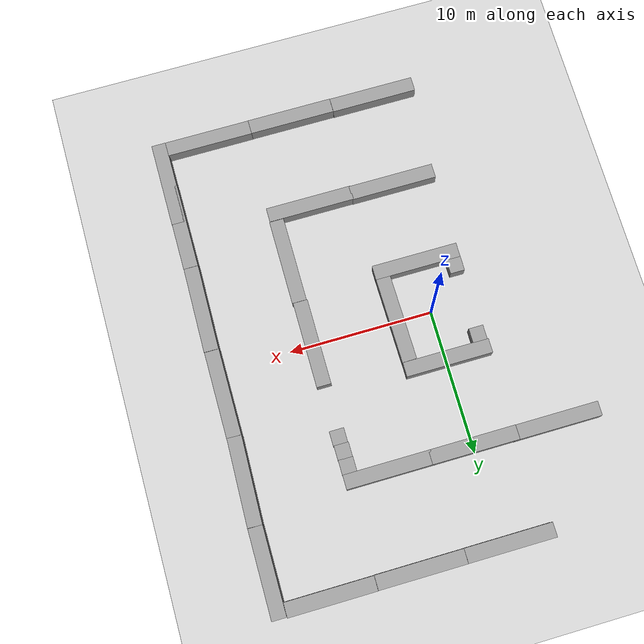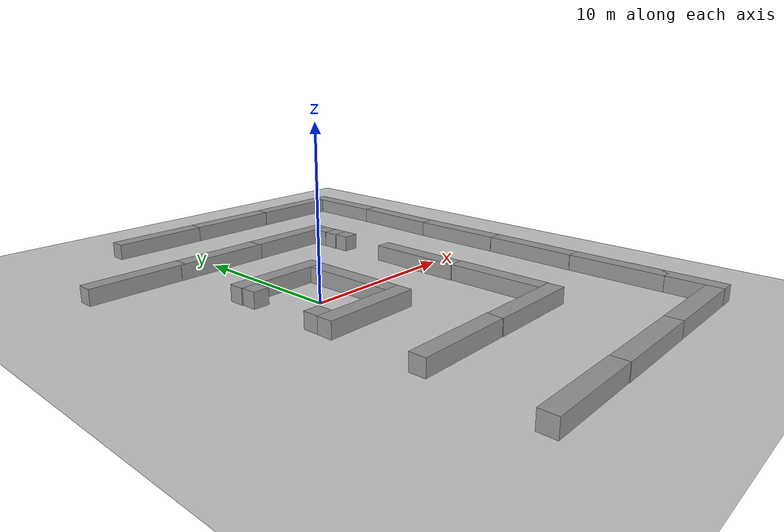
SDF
<sdf version="1.6">
 <world name="default">
  <model name="ground_plane">
   <static>1</static>
   <link name="link">
    <collision name="collision">
     <geometry><plane><normal>0 0 1</normal><size>100 100</size></plane></geometry>
     <surface>
      <contact><collide_bitmask>65535</collide_bitmask></contact>
      <friction><ode><mu>100</mu><mu2>50</mu2></ode></friction>
     </surface>
    </collision>
    <visual name="visual">
     <cast_shadows>0</cast_shadows>
     <geometry><plane><normal>0 0 1</normal><size>100 100</size></plane></geometry>
     <material>
      <script><uri>file://media/materials/scripts/gazebo.material</uri><name>Gazebo/Grey</name></script>
     </material>
    </visual>
   </link>
  </model>
  <model name="long_wall">
   <link name="link">
    <inertial>
     <mass>1</mass>
     <inertia>
      <ixx>0.166667</ixx>
      <ixy>0</ixy>
      <ixz>0</ixz>
      <iyy>0.166667</iyy>
      <iyz>0</iyz>
      <izz>0.166667</izz>
     </inertia>
    </inertial>
    <visual name="visual">
     <geometry><box><size>6 1 1</size></box></geometry>
     <material>
      <script><name>Gazebo/Grey</name><uri>file://media/materials/scripts/gazebo.material</uri></script>
      <shader type="vertex"><normal_map>__default__</normal_map></shader>
      <ambient>0.3 0.3 0.3 1</ambient>
      <diffuse>0.7 0.7 0.7 1</diffuse>
      <specular>0.01 0.01 0.01 1</specular>
      <emissive>0 0 0 1</emissive>
     </material>
    </visual>
    <collision name="collision">
     <geometry><box><size>1 1 1</size></box></geometry>
     <surface>
      <friction>
       <ode><mu>1</mu><mu2>1</mu2><fdir1>0 0 0</fdir1><slip1>0</slip1><slip2>0</slip2></ode>
       <torsional>
        <coefficient>1</coefficient>
        <patch_radius>0</patch_radius>
        <surface_radius>0</surface_radius>
        <use_patch_radius>1</use_patch_radius>
        <ode><slip>0</slip></ode>
       </torsional>
      </friction>
      <bounce><restitution_coefficient>0</restitution_coefficient><threshold>1e+06</threshold></bounce>
      <contact>
       <collide_without_contact>0</collide_without_contact>
       <collide_without_contact_bitmask>1</collide_without_contact_bitmask>
       <collide_bitmask>1</collide_bitmask>
       <ode>
        <soft_cfm>0</soft_cfm>
        <soft_erp>0.2</soft_erp>
        <kp>1e+13</kp>
        <kd>1</kd>
        <max_vel>0.01</max_vel>
        <min_depth>0</min_depth>
       </ode>
       <bullet>
        <split_impulse>1</split_impulse>
        <split_impulse_penetration_threshold>-0.01</split_impulse_penetration_threshold>
        <soft_cfm>0</soft_cfm>
        <soft_erp>0.2</soft_erp>
        <kp>1e+13</kp>
        <kd>1</kd>
       </bullet>
      </contact>
     </surface>
    </collision>
   </link>
   <static>0</static>
   <pose>0.049255 -3.53236 0.5 0 -0 0</pose>
  </model>
  <model name="long_wall_0">
   <link name="link">
    <inertial>
     <mass>1</mass>
     <inertia>
      <ixx>0.166667</ixx>
      <ixy>0</ixy>
      <ixz>0</ixz>
      <iyy>0.166667</iyy>
      <iyz>0</iyz>
      <izz>0.166667</izz>
     </inertia>
    </inertial>
    <visual name="visual">
     <geometry><box><size>6 1 1</size></box></geometry>
     <material>
      <script><name>Gazebo/Grey</name><uri>file://media/materials/scripts/gazebo.material</uri></script>
      <shader type="vertex"><normal_map>__default__</normal_map></shader>
      <ambient>0.3 0.3 0.3 1</ambient>
      <diffuse>0.7 0.7 0.7 1</diffuse>
      <specular>0.01 0.01 0.01 1</specular>
      <emissive>0 0 0 1</emissive>
     </material>
     <pose>0 0 0.5 0 -0 0</pose>
    </visual>
    <collision name="collision">
     <geometry><box><size>1 1 1</size></box></geometry>
     <surface>
      <friction>
       <ode><mu>1</mu><mu2>1</mu2><fdir1>0 0 0</fdir1><slip1>0</slip1><slip2>0</slip2></ode>
       <torsional>
        <coefficient>1</coefficient>
        <patch_radius>0</patch_radius>
        <surface_radius>0</surface_radius>
        <use_patch_radius>1</use_patch_radius>
        <ode><slip>0</slip></ode>
       </torsional>
      </friction>
      <bounce><restitution_coefficient>0</restitution_coefficient><threshold>1e+06</threshold></bounce>
      <contact>
       <collide_without_contact>0</collide_without_contact>
       <collide_without_contact_bitmask>1</collide_without_contact_bitmask>
       <collide_bitmask>1</collide_bitmask>
       <ode>
        <soft_cfm>0</soft_cfm>
        <soft_erp>0.2</soft_erp>
        <kp>1e+13</kp>
        <kd>1</kd>
        <max_vel>0.01</max_vel>
        <min_depth>0</min_depth>
       </ode>
       <bullet>
        <split_impulse>1</split_impulse>
        <split_impulse_penetration_threshold>-0.01</split_impulse_penetration_threshold>
        <soft_cfm>0</soft_cfm>
        <soft_erp>0.2</soft_erp>
        <kp>1e+13</kp>
        <kd>1</kd>
       </bullet>
      </contact>
     </surface>
    </collision>
   </link>
   <static>0</static>
   <pose>2.49568 -0.041218 0 0 0 -1.55477</pose>
  </model>
  <model name="long_wall_0_0">
   <link name="link">
    <inertial>
     <mass>1</mass>
     <inertia>
      <ixx>0.166667</ixx>
      <ixy>0</ixy>
      <ixz>0</ixz>
      <iyy>0.166667</iyy>
      <iyz>0</iyz>
      <izz>0.166667</izz>
     </inertia>
    </inertial>
    <visual name="visual">
     <geometry><box><size>6 1 1</size></box></geometry>
     <material>
      <script><name>Gazebo/Grey</name><uri>file://media/materials/scripts/gazebo.material</uri></script>
      <shader type="vertex"><normal_map>__default__</normal_map></shader>
      <ambient>0.3 0.3 0.3 1</ambient>
      <diffuse>0.7 0.7 0.7 1</diffuse>
      <specular>0.01 0.01 0.01 1</specular>
      <emissive>0 0 0 1</emissive>
     </material>
     <pose>0 0 0.5 0 -0 0</pose>
    </visual>
    <collision name="collision">
     <geometry><box><size>1 1 1</size></box></geometry>
     <surface>
      <friction>
       <ode><mu>1</mu><mu2>1</mu2><fdir1>0 0 0</fdir1><slip1>0</slip1><slip2>0</slip2></ode>
       <torsional>
        <coefficient>1</coefficient>
        <patch_radius>0</patch_radius>
        <surface_radius>0</surface_radius>
        <use_patch_radius>1</use_patch_radius>
        <ode><slip>0</slip></ode>
       </torsional>
      </friction>
      <bounce><restitution_coefficient>0</restitution_coefficient><threshold>1e+06</threshold></bounce>
      <contact>
       <collide_without_contact>0</collide_without_contact>
       <collide_without_contact_bitmask>1</collide_without_contact_bitmask>
       <collide_bitmask>1</collide_bitmask>
       <ode>
        <soft_cfm>0</soft_cfm>
        <soft_erp>0.2</soft_erp>
        <kp>1e+13</kp>
        <kd>1</kd>
        <max_vel>0.01</max_vel>
        <min_depth>0</min_depth>
       </ode>
       <bullet>
        <split_impulse>1</split_impulse>
        <split_impulse_penetration_threshold>-0.01</split_impulse_penetration_threshold>
        <soft_cfm>0</soft_cfm>
        <soft_erp>0.2</soft_erp>
        <kp>1e+13</kp>
        <kd>1</kd>
       </bullet>
      </contact>
     </surface>
    </collision>
   </link>
   <static>0</static>
   <pose>-0.064351 3.46733 0 0 -0 0</pose>
  </model>
  <model name="unit_box">
   <pose>-2.45124 -2.53302 0.5 0 -0 0</pose>
   <link name="link">
    <inertial>
     <mass>1</mass>
     <inertia>
      <ixx>0.166667</ixx>
      <ixy>0</ixy>
      <ixz>0</ixz>
      <iyy>0.166667</iyy>
      <iyz>0</iyz>
      <izz>0.166667</izz>
     </inertia>
    </inertial>
    <collision name="collision"><geometry><box><size>1 1 1</size></box></geometry></collision>
    <visual name="visual">
     <geometry><box><size>1 1 1</size></box></geometry>
     <material>
      <script><name>Gazebo/Grey</name><uri>file://media/materials/scripts/gazebo.material</uri></script>
     </material>
    </visual>
   </link>
  </model>
  <model name="unit_box_0">
   <pose>-2.48602 2.47883 0.5 0 -0 0</pose>
   <link name="link">
    <inertial>
     <mass>1</mass>
     <inertia>
      <ixx>0.166667</ixx>
      <ixy>0</ixy>
      <ixz>0</ixz>
      <iyy>0.166667</iyy>
      <iyz>0</iyz>
      <izz>0.166667</izz>
     </inertia>
    </inertial>
    <collision name="collision"><geometry><box><size>1 1 1</size></box></geometry></collision>
    <visual name="visual">
     <geometry><box><size>1 1 1</size></box></geometry>
     <material>
      <script><name>Gazebo/Grey</name><uri>file://media/materials/scripts/gazebo.material</uri></script>
     </material>
    </visual>
   </link>
  </model>
  <model name="long_wall_0_1">
   <link name="link">
    <inertial>
     <mass>1</mass>
     <inertia>
      <ixx>0.166667</ixx>
      <ixy>0</ixy>
      <ixz>0</ixz>
      <iyy>0.166667</iyy>
      <iyz>0</iyz>
      <izz>0.166667</izz>
     </inertia>
    </inertial>
    <visual name="visual">
     <geometry><box><size>6 1 1</size></box></geometry>
     <material>
      <script><name>Gazebo/Grey</name><uri>file://media/materials/scripts/gazebo.material</uri></script>
      <shader type="vertex"><normal_map>__default__</normal_map></shader>
      <ambient>0.3 0.3 0.3 1</ambient>
      <diffuse>0.7 0.7 0.7 1</diffuse>
      <specular>0.01 0.01 0.01 1</specular>
      <emissive>0 0 0 1</emissive>
     </material>
     <pose>0 0 0.5 0 -0 0</pose>
    </visual>
    <collision name="collision">
     <geometry><box><size>1 1 1</size></box></geometry>
     <surface>
      <friction>
       <ode><mu>1</mu><mu2>1</mu2><fdir1>0 0 0</fdir1><slip1>0</slip1><slip2>0</slip2></ode>
       <torsional>
        <coefficient>1</coefficient>
        <patch_radius>0</patch_radius>
        <surface_radius>0</surface_radius>
        <use_patch_radius>1</use_patch_radius>
        <ode><slip>0</slip></ode>
       </torsional>
      </friction>
      <bounce><restitution_coefficient>0</restitution_coefficient><threshold>1e+06</threshold></bounce>
      <contact>
       <collide_without_contact>0</collide_without_contact>
       <collide_without_contact_bitmask>1</collide_without_contact_bitmask>
       <collide_bitmask>1</collide_bitmask>
       <ode>
        <soft_cfm>0</soft_cfm>
        <soft_erp>0.2</soft_erp>
        <kp>1e+13</kp>
        <kd>1</kd>
        <max_vel>0.01</max_vel>
        <min_depth>0</min_depth>
       </ode>
       <bullet>
        <split_impulse>1</split_impulse>
        <split_impulse_penetration_threshold>-0.01</split_impulse_penetration_threshold>
        <soft_cfm>0</soft_cfm>
        <soft_erp>0.2</soft_erp>
        <kp>1e+13</kp>
        <kd>1</kd>
       </bullet>
      </contact>
     </surface>
    </collision>
   </link>
   <static>0</static>
   <pose>-0.009202 -9.5091 0 0 -0 0</pose>
  </model>
  <model name="long_wall_0_2">
   <link name="link">
    <inertial>
     <mass>1</mass>
     <inertia>
      <ixx>0.166667</ixx>
      <ixy>0</ixy>
      <ixz>0</ixz>
      <iyy>0.166667</iyy>
      <iyz>0</iyz>
      <izz>0.166667</izz>
     </inertia>
    </inertial>
    <visual name="visual">
     <geometry><box><size>6 1 1</size></box></geometry>
     <material>
      <script><name>Gazebo/Grey</name><uri>file://media/materials/scripts/gazebo.material</uri></script>
      <shader type="vertex"><normal_map>__default__</normal_map></shader>
      <ambient>0.3 0.3 0.3 1</ambient>
      <diffuse>0.7 0.7 0.7 1</diffuse>
      <specular>0.01 0.01 0.01 1</specular>
      <emissive>0 0 0 1</emissive>
     </material>
     <pose>0 0 0.5 0 -0 0</pose>
    </visual>
    <collision name="collision">
     <geometry><box><size>1 1 1</size></box></geometry>
     <surface>
      <friction>
       <ode><mu>1</mu><mu2>1</mu2><fdir1>0 0 0</fdir1><slip1>0</slip1><slip2>0</slip2></ode>
       <torsional>
        <coefficient>1</coefficient>
        <patch_radius>0</patch_radius>
        <surface_radius>0</surface_radius>
        <use_patch_radius>1</use_patch_radius>
        <ode><slip>0</slip></ode>
       </torsional>
      </friction>
      <bounce><restitution_coefficient>0</restitution_coefficient><threshold>1e+06</threshold></bounce>
      <contact>
       <collide_without_contact>0</collide_without_contact>
       <collide_without_contact_bitmask>1</collide_without_contact_bitmask>
       <collide_bitmask>1</collide_bitmask>
       <ode>
        <soft_cfm>0</soft_cfm>
        <soft_erp>0.2</soft_erp>
        <kp>1e+13</kp>
        <kd>1</kd>
        <max_vel>0.01</max_vel>
        <min_depth>0</min_depth>
       </ode>
       <bullet>
        <split_impulse>1</split_impulse>
        <split_impulse_penetration_threshold>-0.01</split_impulse_penetration_threshold>
        <soft_cfm>0</soft_cfm>
        <soft_erp>0.2</soft_erp>
        <kp>1e+13</kp>
        <kd>1</kd>
       </bullet>
      </contact>
     </surface>
    </collision>
   </link>
   <static>0</static>
   <pose>-0.017464 9.51056 0 0 -0 0</pose>
  </model>
  <model name="long_wall_0_3">
   <link name="link">
    <inertial>
     <mass>1</mass>
     <inertia>
      <ixx>0.166667</ixx>
      <ixy>0</ixy>
      <ixz>0</ixz>
      <iyy>0.166667</iyy>
      <iyz>0</iyz>
      <izz>0.166667</izz>
     </inertia>
    </inertial>
    <visual name="visual">
     <geometry><box><size>6 1 1</size></box></geometry>
     <material>
      <script><name>Gazebo/Grey</name><uri>file://media/materials/scripts/gazebo.material</uri></script>
      <shader type="vertex"><normal_map>__default__</normal_map></shader>
      <ambient>0.3 0.3 0.3 1</ambient>
      <diffuse>0.7 0.7 0.7 1</diffuse>
      <specular>0.01 0.01 0.01 1</specular>
      <emissive>0 0 0 1</emissive>
     </material>
     <pose>0 0 0.5 0 -0 0</pose>
    </visual>
    <collision name="collision">
     <geometry><box><size>1 1 1</size></box></geometry>
     <surface>
      <friction>
       <ode><mu>1</mu><mu2>1</mu2><fdir1>0 0 0</fdir1><slip1>0</slip1><slip2>0</slip2></ode>
       <torsional>
        <coefficient>1</coefficient>
        <patch_radius>0</patch_radius>
        <surface_radius>0</surface_radius>
        <use_patch_radius>1</use_patch_radius>
        <ode><slip>0</slip></ode>
       </torsional>
      </friction>
      <bounce><restitution_coefficient>0</restitution_coefficient><threshold>1e+06</threshold></bounce>
      <contact>
       <collide_without_contact>0</collide_without_contact>
       <collide_without_contact_bitmask>1</collide_without_contact_bitmask>
       <collide_bitmask>1</collide_bitmask>
       <ode>
        <soft_cfm>0</soft_cfm>
        <soft_erp>0.2</soft_erp>
        <kp>1e+13</kp>
        <kd>1</kd>
        <max_vel>0.01</max_vel>
        <min_depth>0</min_depth>
       </ode>
       <bullet>
        <split_impulse>1</split_impulse>
        <split_impulse_penetration_threshold>-0.01</split_impulse_penetration_threshold>
        <soft_cfm>0</soft_cfm>
        <soft_erp>0.2</soft_erp>
        <kp>1e+13</kp>
        <kd>1</kd>
       </bullet>
      </contact>
     </surface>
    </collision>
   </link>
   <static>0</static>
   <pose>5.92003 -9.53571 0 0 -0 0</pose>
  </model>
  <model name="long_wall_0_4">
   <link name="link">
    <inertial>
     <mass>1</mass>
     <inertia>
      <ixx>0.166667</ixx>
      <ixy>0</ixy>
      <ixz>0</ixz>
      <iyy>0.166667</iyy>
      <iyz>0</iyz>
      <izz>0.166667</izz>
     </inertia>
    </inertial>
    <visual name="visual">
     <geometry><box><size>6 1 1</size></box></geometry>
     <material>
      <script><name>Gazebo/Grey</name><uri>file://media/materials/scripts/gazebo.material</uri></script>
      <shader type="vertex"><normal_map>__default__</normal_map></shader>
      <ambient>0.3 0.3 0.3 1</ambient>
      <diffuse>0.7 0.7 0.7 1</diffuse>
      <specular>0.01 0.01 0.01 1</specular>
      <emissive>0 0 0 1</emissive>
     </material>
     <pose>0 0 0.5 0 -0 0</pose>
    </visual>
    <collision name="collision">
     <geometry><box><size>1 1 1</size></box></geometry>
     <surface>
      <friction>
       <ode><mu>1</mu><mu2>1</mu2><fdir1>0 0 0</fdir1><slip1>0</slip1><slip2>0</slip2></ode>
       <torsional>
        <coefficient>1</coefficient>
        <patch_radius>0</patch_radius>
        <surface_radius>0</surface_radius>
        <use_patch_radius>1</use_patch_radius>
        <ode><slip>0</slip></ode>
       </torsional>
      </friction>
      <bounce><restitution_coefficient>0</restitution_coefficient><threshold>1e+06</threshold></bounce>
      <contact>
       <collide_without_contact>0</collide_without_contact>
       <collide_without_contact_bitmask>1</collide_without_contact_bitmask>
       <collide_bitmask>1</collide_bitmask>
       <ode>
        <soft_cfm>0</soft_cfm>
        <soft_erp>0.2</soft_erp>
        <kp>1e+13</kp>
        <kd>1</kd>
        <max_vel>0.01</max_vel>
        <min_depth>0</min_depth>
       </ode>
       <bullet>
        <split_impulse>1</split_impulse>
        <split_impulse_penetration_threshold>-0.01</split_impulse_penetration_threshold>
        <soft_cfm>0</soft_cfm>
        <soft_erp>0.2</soft_erp>
        <kp>1e+13</kp>
        <kd>1</kd>
       </bullet>
      </contact>
     </surface>
    </collision>
   </link>
   <static>0</static>
   <pose>5.83103 9.51107 0 0 -0 0</pose>
  </model>
  <model name="long_wall_0_5">
   <link name="link">
    <inertial>
     <mass>1</mass>
     <inertia>
      <ixx>0.166667</ixx>
      <ixy>0</ixy>
      <ixz>0</ixz>
      <iyy>0.166667</iyy>
      <iyz>0</iyz>
      <izz>0.166667</izz>
     </inertia>
    </inertial>
    <visual name="visual">
     <geometry><box><size>6 1 1</size></box></geometry>
     <material>
      <script><name>Gazebo/Grey</name><uri>file://media/materials/scripts/gazebo.material</uri></script>
      <shader type="vertex"><normal_map>__default__</normal_map></shader>
      <ambient>0.3 0.3 0.3 1</ambient>
      <diffuse>0.7 0.7 0.7 1</diffuse>
      <specular>0.01 0.01 0.01 1</specular>
      <emissive>0 0 0 1</emissive>
     </material>
     <pose>0 0 0.5 0 -0 0</pose>
    </visual>
    <collision name="collision">
     <geometry><box><size>1 1 1</size></box></geometry>
     <surface>
      <friction>
       <ode><mu>1</mu><mu2>1</mu2><fdir1>0 0 0</fdir1><slip1>0</slip1><slip2>0</slip2></ode>
       <torsional>
        <coefficient>1</coefficient>
        <patch_radius>0</patch_radius>
        <surface_radius>0</surface_radius>
        <use_patch_radius>1</use_patch_radius>
        <ode><slip>0</slip></ode>
       </torsional>
      </friction>
      <bounce><restitution_coefficient>0</restitution_coefficient><threshold>1e+06</threshold></bounce>
      <contact>
       <collide_without_contact>0</collide_without_contact>
       <collide_without_contact_bitmask>1</collide_without_contact_bitmask>
       <collide_bitmask>1</collide_bitmask>
       <ode>
        <soft_cfm>0</soft_cfm>
        <soft_erp>0.2</soft_erp>
        <kp>1e+13</kp>
        <kd>1</kd>
        <max_vel>0.01</max_vel>
        <min_depth>0</min_depth>
       </ode>
       <bullet>
        <split_impulse>1</split_impulse>
        <split_impulse_penetration_threshold>-0.01</split_impulse_penetration_threshold>
        <soft_cfm>0</soft_cfm>
        <soft_erp>0.2</soft_erp>
        <kp>1e+13</kp>
        <kd>1</kd>
       </bullet>
      </contact>
     </surface>
    </collision>
   </link>
   <static>0</static>
   <pose>8.45903 -6.01437 0 0 -0 1.5708</pose>
  </model>
  <model name="long_wall_0_6">
   <link name="link">
    <inertial>
     <mass>1</mass>
     <inertia>
      <ixx>0.166667</ixx>
      <ixy>0</ixy>
      <ixz>0</ixz>
      <iyy>0.166667</iyy>
      <iyz>0</iyz>
      <izz>0.166667</izz>
     </inertia>
    </inertial>
    <visual name="visual">
     <geometry><box><size>6 1 1</size></box></geometry>
     <material>
      <script><name>Gazebo/Grey</name><uri>file://media/materials/scripts/gazebo.material</uri></script>
      <shader type="vertex"><normal_map>__default__</normal_map></shader>
      <ambient>0.3 0.3 0.3 1</ambient>
      <diffuse>0.7 0.7 0.7 1</diffuse>
      <specular>0.01 0.01 0.01 1</specular>
      <emissive>0 0 0 1</emissive>
     </material>
     <pose>0 0 0.5 0 -0 0</pose>
    </visual>
    <collision name="collision">
     <geometry><box><size>1 1 1</size></box></geometry>
     <surface>
      <friction>
       <ode><mu>1</mu><mu2>1</mu2><fdir1>0 0 0</fdir1><slip1>0</slip1><slip2>0</slip2></ode>
       <torsional>
        <coefficient>1</coefficient>
        <patch_radius>0</patch_radius>
        <surface_radius>0</surface_radius>
        <use_patch_radius>1</use_patch_radius>
        <ode><slip>0</slip></ode>
       </torsional>
      </friction>
      <bounce><restitution_coefficient>0</restitution_coefficient><threshold>1e+06</threshold></bounce>
      <contact>
       <collide_without_contact>0</collide_without_contact>
       <collide_without_contact_bitmask>1</collide_without_contact_bitmask>
       <collide_bitmask>1</collide_bitmask>
       <ode>
        <soft_cfm>0</soft_cfm>
        <soft_erp>0.2</soft_erp>
        <kp>1e+13</kp>
        <kd>1</kd>
        <max_vel>0.01</max_vel>
        <min_depth>0</min_depth>
       </ode>
       <bullet>
        <split_impulse>1</split_impulse>
        <split_impulse_penetration_threshold>-0.01</split_impulse_penetration_threshold>
        <soft_cfm>0</soft_cfm>
        <soft_erp>0.2</soft_erp>
        <kp>1e+13</kp>
        <kd>1</kd>
       </bullet>
      </contact>
     </surface>
    </collision>
   </link>
   <static>0</static>
   <pose>8.40487 -0.007823 0 0 0 -1.5708</pose>
  </model>
  <model name="unit_box_1">
   <pose>8.34651 8.51743 0.5 0 -0 0</pose>
   <link name="link">
    <inertial>
     <mass>1</mass>
     <inertia>
      <ixx>0.166667</ixx>
      <ixy>0</ixy>
      <ixz>0</ixz>
      <iyy>0.166667</iyy>
      <iyz>0</iyz>
      <izz>0.166667</izz>
     </inertia>
    </inertial>
    <collision name="collision"><geometry><box><size>1 1 1</size></box></geometry></collision>
    <visual name="visual">
     <geometry><box><size>1 1 1</size></box></geometry>
     <material>
      <script><name>Gazebo/Grey</name><uri>file://media/materials/scripts/gazebo.material</uri></script>
     </material>
    </visual>
   </link>
  </model>
  <model name="unit_box_2">
   <pose>8.36219 7.52912 0.5 0 -0 0</pose>
   <link name="link">
    <inertial>
     <mass>1</mass>
     <inertia>
      <ixx>0.166667</ixx>
      <ixy>0</ixy>
      <ixz>0</ixz>
      <iyy>0.166667</iyy>
      <iyz>0</iyz>
      <izz>0.166667</izz>
     </inertia>
    </inertial>
    <collision name="collision"><geometry><box><size>1 1 1</size></box></geometry></collision>
    <visual name="visual">
     <geometry><box><size>1 1 1</size></box></geometry>
     <material>
      <script><name>Gazebo/Grey</name><uri>file://media/materials/scripts/gazebo.material</uri></script>
     </material>
    </visual>
   </link>
  </model>
  <model name="unit_box_3">
   <pose>8.4049 6.54082 0.5 0 -0 0</pose>
   <link name="link">
    <inertial>
     <mass>1</mass>
     <inertia>
      <ixx>0.166667</ixx>
      <ixy>0</ixy>
      <ixz>0</ixz>
      <iyy>0.166667</iyy>
      <iyz>0</iyz>
      <izz>0.166667</izz>
     </inertia>
    </inertial>
    <collision name="collision"><geometry><box><size>1 1 1</size></box></geometry></collision>
    <visual name="visual">
     <geometry><box><size>1 1 1</size></box></geometry>
     <material>
      <script><name>Gazebo/Grey</name><uri>file://media/materials/scripts/gazebo.material</uri></script>
     </material>
    </visual>
   </link>
  </model>
  <model name="long_wall_0_7">
   <link name="link">
    <inertial>
     <mass>1</mass>
     <inertia>
      <ixx>0.166667</ixx>
      <ixy>0</ixy>
      <ixz>0</ixz>
      <iyy>0.166667</iyy>
      <iyz>0</iyz>
      <izz>0.166667</izz>
     </inertia>
    </inertial>
    <visual name="visual">
     <geometry><box><size>6 1 1</size></box></geometry>
     <material>
      <script><name>Gazebo/Grey</name><uri>file://media/materials/scripts/gazebo.material</uri></script>
      <shader type="vertex"><normal_map>__default__</normal_map></shader>
      <ambient>0.3 0.3 0.3 1</ambient>
      <diffuse>0.7 0.7 0.7 1</diffuse>
      <specular>0.01 0.01 0.01 1</specular>
      <emissive>0 0 0 1</emissive>
     </material>
     <pose>0 0 0.5 0 -0 0</pose>
    </visual>
    <collision name="collision">
     <geometry><box><size>1 1 1</size></box></geometry>
     <surface>
      <friction>
       <ode><mu>1</mu><mu2>1</mu2><fdir1>0 0 0</fdir1><slip1>0</slip1><slip2>0</slip2></ode>
       <torsional>
        <coefficient>1</coefficient>
        <patch_radius>0</patch_radius>
        <surface_radius>0</surface_radius>
        <use_patch_radius>1</use_patch_radius>
        <ode><slip>0</slip></ode>
       </torsional>
      </friction>
      <bounce><restitution_coefficient>0</restitution_coefficient><threshold>1e+06</threshold></bounce>
      <contact>
       <collide_without_contact>0</collide_without_contact>
       <collide_without_contact_bitmask>1</collide_without_contact_bitmask>
       <collide_bitmask>1</collide_bitmask>
       <ode>
        <soft_cfm>0</soft_cfm>
        <soft_erp>0.2</soft_erp>
        <kp>1e+13</kp>
        <kd>1</kd>
        <max_vel>0.01</max_vel>
        <min_depth>0</min_depth>
       </ode>
       <bullet>
        <split_impulse>1</split_impulse>
        <split_impulse_penetration_threshold>-0.01</split_impulse_penetration_threshold>
        <soft_cfm>0</soft_cfm>
        <soft_erp>0.2</soft_erp>
        <kp>1e+13</kp>
        <kd>1</kd>
       </bullet>
      </contact>
     </surface>
    </collision>
   </link>
   <static>0</static>
   <pose>-5.72862 9.522 0 0 -0 0</pose>
  </model>
  <model name="long_wall_0_17">
   <link name="link">
    <inertial>
     <mass>1</mass>
     <inertia>
      <ixx>0.166667</ixx>
      <ixy>0</ixy>
      <ixz>0</ixz>
      <iyy>0.166667</iyy>
      <iyz>0</iyz>
      <izz>0.166667</izz>
     </inertia>
    </inertial>
    <visual name="visual">
     <geometry><box><size>6 1 1</size></box></geometry>
     <material>
      <script><name>Gazebo/Grey</name><uri>file://media/materials/scripts/gazebo.material</uri></script>
      <shader type="vertex"><normal_map>__default__</normal_map></shader>
      <ambient>0.3 0.3 0.3 1</ambient>
      <diffuse>0.7 0.7 0.7 1</diffuse>
      <specular>0.01 0.01 0.01 1</specular>
      <emissive>0 0 0 1</emissive>
     </material>
     <pose>0 0 0.5 0 -0 0</pose>
    </visual>
    <collision name="collision">
     <geometry><box><size>1 1 1</size></box></geometry>
     <surface>
      <friction>
       <ode><mu>1</mu><mu2>1</mu2><fdir1>0 0 0</fdir1><slip1>0</slip1><slip2>0</slip2></ode>
       <torsional>
        <coefficient>1</coefficient>
        <patch_radius>0</patch_radius>
        <surface_radius>0</surface_radius>
        <use_patch_radius>1</use_patch_radius>
        <ode><slip>0</slip></ode>
       </torsional>
      </friction>
      <bounce><restitution_coefficient>0</restitution_coefficient><threshold>1e+06</threshold></bounce>
      <contact>
       <collide_without_contact>0</collide_without_contact>
       <collide_without_contact_bitmask>1</collide_without_contact_bitmask>
       <collide_bitmask>1</collide_bitmask>
       <ode>
        <soft_cfm>0</soft_cfm>
        <soft_erp>0.2</soft_erp>
        <kp>1e+13</kp>
        <kd>1</kd>
        <max_vel>0.01</max_vel>
        <min_depth>0</min_depth>
       </ode>
       <bullet>
        <split_impulse>1</split_impulse>
        <split_impulse_penetration_threshold>-0.01</split_impulse_penetration_threshold>
        <soft_cfm>0</soft_cfm>
        <soft_erp>0.2</soft_erp>
        <kp>1e+13</kp>
        <kd>1</kd>
       </bullet>
      </contact>
     </surface>
    </collision>
   </link>
   <static>0</static>
   <pose>5.6186 16.1786 0 0 -0 0</pose>
  </model>
  <model name="long_wall_0_18">
   <link name="link">
    <inertial>
     <mass>1</mass>
     <inertia>
      <ixx>0.166667</ixx>
      <ixy>0</ixy>
      <ixz>0</ixz>
      <iyy>0.166667</iyy>
      <iyz>0</iyz>
      <izz>0.166667</izz>
     </inertia>
    </inertial>
    <visual name="visual">
     <geometry><box><size>6 1 1</size></box></geometry>
     <material>
      <script><name>Gazebo/Grey</name><uri>file://media/materials/scripts/gazebo.material</uri></script>
      <shader type="vertex"><normal_map>__default__</normal_map></shader>
      <ambient>0.3 0.3 0.3 1</ambient>
      <diffuse>0.7 0.7 0.7 1</diffuse>
      <specular>0.01 0.01 0.01 1</specular>
      <emissive>0 0 0 1</emissive>
     </material>
     <pose>0 0 0.5 0 -0 0</pose>
    </visual>
    <collision name="collision">
     <geometry><box><size>1 1 1</size></box></geometry>
     <surface>
      <friction>
       <ode><mu>1</mu><mu2>1</mu2><fdir1>0 0 0</fdir1><slip1>0</slip1><slip2>0</slip2></ode>
       <torsional>
        <coefficient>1</coefficient>
        <patch_radius>0</patch_radius>
        <surface_radius>0</surface_radius>
        <use_patch_radius>1</use_patch_radius>
        <ode><slip>0</slip></ode>
       </torsional>
      </friction>
      <bounce><restitution_coefficient>0</restitution_coefficient><threshold>1e+06</threshold></bounce>
      <contact>
       <collide_without_contact>0</collide_without_contact>
       <collide_without_contact_bitmask>1</collide_without_contact_bitmask>
       <collide_bitmask>1</collide_bitmask>
       <ode>
        <soft_cfm>0</soft_cfm>
        <soft_erp>0.2</soft_erp>
        <kp>1e+13</kp>
        <kd>1</kd>
        <max_vel>0.01</max_vel>
        <min_depth>0</min_depth>
       </ode>
       <bullet>
        <split_impulse>1</split_impulse>
        <split_impulse_penetration_threshold>-0.01</split_impulse_penetration_threshold>
        <soft_cfm>0</soft_cfm>
        <soft_erp>0.2</soft_erp>
        <kp>1e+13</kp>
        <kd>1</kd>
       </bullet>
      </contact>
     </surface>
    </collision>
   </link>
   <static>0</static>
   <pose>-0.38274 16.1708 0 0 -0 0</pose>
  </model>
  <model name="long_wall_0_28">
   <link name="link">
    <inertial>
     <mass>1</mass>
     <inertia>
      <ixx>0.166667</ixx>
      <ixy>0</ixy>
      <ixz>0</ixz>
      <iyy>0.166667</iyy>
      <iyz>0</iyz>
      <izz>0.166667</izz>
     </inertia>
    </inertial>
    <visual name="visual">
     <geometry><box><size>6 1 1</size></box></geometry>
     <material>
      <script><name>Gazebo/Grey</name><uri>file://media/materials/scripts/gazebo.material</uri></script>
      <shader type="vertex"><normal_map>__default__</normal_map></shader>
      <ambient>0.3 0.3 0.3 1</ambient>
      <diffuse>0.7 0.7 0.7 1</diffuse>
      <specular>0.01 0.01 0.01 1</specular>
      <emissive>0 0 0 1</emissive>
     </material>
     <pose>0 0 0.5 0 -0 0</pose>
    </visual>
    <collision name="collision">
     <geometry><box><size>1 1 1</size></box></geometry>
     <surface>
      <friction>
       <ode><mu>1</mu><mu2>1</mu2><fdir1>0 0 0</fdir1><slip1>0</slip1><slip2>0</slip2></ode>
       <torsional>
        <coefficient>1</coefficient>
        <patch_radius>0</patch_radius>
        <surface_radius>0</surface_radius>
        <use_patch_radius>1</use_patch_radius>
        <ode><slip>0</slip></ode>
       </torsional>
      </friction>
      <bounce><restitution_coefficient>0</restitution_coefficient><threshold>1e+06</threshold></bounce>
      <contact>
       <collide_without_contact>0</collide_without_contact>
       <collide_without_contact_bitmask>1</collide_without_contact_bitmask>
       <collide_bitmask>1</collide_bitmask>
       <ode>
        <soft_cfm>0</soft_cfm>
        <soft_erp>0.2</soft_erp>
        <kp>1e+13</kp>
        <kd>1</kd>
        <max_vel>0.01</max_vel>
        <min_depth>0</min_depth>
       </ode>
       <bullet>
        <split_impulse>1</split_impulse>
        <split_impulse_penetration_threshold>-0.01</split_impulse_penetration_threshold>
        <soft_cfm>0</soft_cfm>
        <soft_erp>0.2</soft_erp>
        <kp>1e+13</kp>
        <kd>1</kd>
       </bullet>
      </contact>
     </surface>
    </collision>
   </link>
   <static>0</static>
   <pose>11.6294 16.1915 0 0 -0 0</pose>
  </model>
  <model name="long_wall_0_29">
   <link name="link">
    <inertial>
     <mass>1</mass>
     <inertia>
      <ixx>0.166667</ixx>
      <ixy>0</ixy>
      <ixz>0</ixz>
      <iyy>0.166667</iyy>
      <iyz>0</iyz>
      <izz>0.166667</izz>
     </inertia>
    </inertial>
    <visual name="visual">
     <geometry><box><size>6 1 1</size></box></geometry>
     <material>
      <script><name>Gazebo/Grey</name><uri>file://media/materials/scripts/gazebo.material</uri></script>
      <shader type="vertex"><normal_map>__default__</normal_map></shader>
      <ambient>0.3 0.3 0.3 1</ambient>
      <diffuse>0.7 0.7 0.7 1</diffuse>
      <specular>0.01 0.01 0.01 1</specular>
      <emissive>0 0 0 1</emissive>
     </material>
     <pose>0 0 0.5 0 -0 0</pose>
    </visual>
    <collision name="collision">
     <geometry><box><size>1 1 1</size></box></geometry>
     <surface>
      <friction>
       <ode><mu>1</mu><mu2>1</mu2><fdir1>0 0 0</fdir1><slip1>0</slip1><slip2>0</slip2></ode>
       <torsional>
        <coefficient>1</coefficient>
        <patch_radius>0</patch_radius>
        <surface_radius>0</surface_radius>
        <use_patch_radius>1</use_patch_radius>
        <ode><slip>0</slip></ode>
       </torsional>
      </friction>
      <bounce><restitution_coefficient>0</restitution_coefficient><threshold>1e+06</threshold></bounce>
      <contact>
       <collide_without_contact>0</collide_without_contact>
       <collide_without_contact_bitmask>1</collide_without_contact_bitmask>
       <collide_bitmask>1</collide_bitmask>
       <ode>
        <soft_cfm>0</soft_cfm>
        <soft_erp>0.2</soft_erp>
        <kp>1e+13</kp>
        <kd>1</kd>
        <max_vel>0.01</max_vel>
        <min_depth>0</min_depth>
       </ode>
       <bullet>
        <split_impulse>1</split_impulse>
        <split_impulse_penetration_threshold>-0.01</split_impulse_penetration_threshold>
        <soft_cfm>0</soft_cfm>
        <soft_erp>0.2</soft_erp>
        <kp>1e+13</kp>
        <kd>1</kd>
       </bullet>
      </contact>
     </surface>
    </collision>
   </link>
   <static>0</static>
   <pose>15.143 13.6247 0 0 0 -1.5708</pose>
  </model>
  <model name="long_wall_0_30">
   <link name="link">
    <inertial>
     <mass>1</mass>
     <inertia>
      <ixx>0.166667</ixx>
      <ixy>0</ixy>
      <ixz>0</ixz>
      <iyy>0.166667</iyy>
      <iyz>0</iyz>
      <izz>0.166667</izz>
     </inertia>
    </inertial>
    <visual name="visual">
     <geometry><box><size>6 1 1</size></box></geometry>
     <material>
      <script><name>Gazebo/Grey</name><uri>file://media/materials/scripts/gazebo.material</uri></script>
      <shader type="vertex"><normal_map>__default__</normal_map></shader>
      <ambient>0.3 0.3 0.3 1</ambient>
      <diffuse>0.7 0.7 0.7 1</diffuse>
      <specular>0.01 0.01 0.01 1</specular>
      <emissive>0 0 0 1</emissive>
     </material>
     <pose>0 0 0.5 0 -0 0</pose>
    </visual>
    <collision name="collision">
     <geometry><box><size>1 1 1</size></box></geometry>
     <surface>
      <friction>
       <ode><mu>1</mu><mu2>1</mu2><fdir1>0 0 0</fdir1><slip1>0</slip1><slip2>0</slip2></ode>
       <torsional>
        <coefficient>1</coefficient>
        <patch_radius>0</patch_radius>
        <surface_radius>0</surface_radius>
        <use_patch_radius>1</use_patch_radius>
        <ode><slip>0</slip></ode>
       </torsional>
      </friction>
      <bounce><restitution_coefficient>0</restitution_coefficient><threshold>1e+06</threshold></bounce>
      <contact>
       <collide_without_contact>0</collide_without_contact>
       <collide_without_contact_bitmask>1</collide_without_contact_bitmask>
       <collide_bitmask>1</collide_bitmask>
       <ode>
        <soft_cfm>0</soft_cfm>
        <soft_erp>0.2</soft_erp>
        <kp>1e+13</kp>
        <kd>1</kd>
        <max_vel>0.01</max_vel>
        <min_depth>0</min_depth>
       </ode>
       <bullet>
        <split_impulse>1</split_impulse>
        <split_impulse_penetration_threshold>-0.01</split_impulse_penetration_threshold>
        <soft_cfm>0</soft_cfm>
        <soft_erp>0.2</soft_erp>
        <kp>1e+13</kp>
        <kd>1</kd>
       </bullet>
      </contact>
     </surface>
    </collision>
   </link>
   <static>0</static>
   <pose>15.0703 7.61763 0 0 0 -1.59719</pose>
  </model>
  <model name="long_wall_0_31">
   <link name="link">
    <inertial>
     <mass>1</mass>
     <inertia>
      <ixx>0.166667</ixx>
      <ixy>0</ixy>
      <ixz>0</ixz>
      <iyy>0.166667</iyy>
      <iyz>0</iyz>
      <izz>0.166667</izz>
     </inertia>
    </inertial>
    <visual name="visual">
     <geometry><box><size>6 1 1</size></box></geometry>
     <material>
      <script><name>Gazebo/Grey</name><uri>file://media/materials/scripts/gazebo.material</uri></script>
      <shader type="vertex"><normal_map>__default__</normal_map></shader>
      <ambient>0.3 0.3 0.3 1</ambient>
      <diffuse>0.7 0.7 0.7 1</diffuse>
      <specular>0.01 0.01 0.01 1</specular>
      <emissive>0 0 0 1</emissive>
     </material>
     <pose>0 0 0.5 0 -0 0</pose>
    </visual>
    <collision name="collision">
     <geometry><box><size>1 1 1</size></box></geometry>
     <surface>
      <friction>
       <ode><mu>1</mu><mu2>1</mu2><fdir1>0 0 0</fdir1><slip1>0</slip1><slip2>0</slip2></ode>
       <torsional>
        <coefficient>1</coefficient>
        <patch_radius>0</patch_radius>
        <surface_radius>0</surface_radius>
        <use_patch_radius>1</use_patch_radius>
        <ode><slip>0</slip></ode>
       </torsional>
      </friction>
      <bounce><restitution_coefficient>0</restitution_coefficient><threshold>1e+06</threshold></bounce>
      <contact>
       <collide_without_contact>0</collide_without_contact>
       <collide_without_contact_bitmask>1</collide_without_contact_bitmask>
       <collide_bitmask>1</collide_bitmask>
       <ode>
        <soft_cfm>0</soft_cfm>
        <soft_erp>0.2</soft_erp>
        <kp>1e+13</kp>
        <kd>1</kd>
        <max_vel>0.01</max_vel>
        <min_depth>0</min_depth>
       </ode>
       <bullet>
        <split_impulse>1</split_impulse>
        <split_impulse_penetration_threshold>-0.01</split_impulse_penetration_threshold>
        <soft_cfm>0</soft_cfm>
        <soft_erp>0.2</soft_erp>
        <kp>1e+13</kp>
        <kd>1</kd>
       </bullet>
      </contact>
     </surface>
    </collision>
   </link>
   <static>0</static>
   <pose>15.0012 1.62691 0 0 0 -1.5708</pose>
  </model>
  <model name="long_wall_0_32">
   <link name="link">
    <inertial>
     <mass>1</mass>
     <inertia>
      <ixx>0.166667</ixx>
      <ixy>0</ixy>
      <ixz>0</ixz>
      <iyy>0.166667</iyy>
      <iyz>0</iyz>
      <izz>0.166667</izz>
     </inertia>
    </inertial>
    <visual name="visual">
     <geometry><box><size>6 1 1</size></box></geometry>
     <material>
      <script><name>Gazebo/Grey</name><uri>file://media/materials/scripts/gazebo.material</uri></script>
      <shader type="vertex"><normal_map>__default__</normal_map></shader>
      <ambient>0.3 0.3 0.3 1</ambient>
      <diffuse>0.7 0.7 0.7 1</diffuse>
      <specular>0.01 0.01 0.01 1</specular>
      <emissive>0 0 0 1</emissive>
     </material>
     <pose>0 0 0.5 0 -0 0</pose>
    </visual>
    <collision name="collision">
     <geometry><box><size>1 1 1</size></box></geometry>
     <surface>
      <friction>
       <ode><mu>1</mu><mu2>1</mu2><fdir1>0 0 0</fdir1><slip1>0</slip1><slip2>0</slip2></ode>
       <torsional>
        <coefficient>1</coefficient>
        <patch_radius>0</patch_radius>
        <surface_radius>0</surface_radius>
        <use_patch_radius>1</use_patch_radius>
        <ode><slip>0</slip></ode>
       </torsional>
      </friction>
      <bounce><restitution_coefficient>0</restitution_coefficient><threshold>1e+06</threshold></bounce>
      <contact>
       <collide_without_contact>0</collide_without_contact>
       <collide_without_contact_bitmask>1</collide_without_contact_bitmask>
       <collide_bitmask>1</collide_bitmask>
       <ode>
        <soft_cfm>0</soft_cfm>
        <soft_erp>0.2</soft_erp>
        <kp>1e+13</kp>
        <kd>1</kd>
        <max_vel>0.01</max_vel>
        <min_depth>0</min_depth>
       </ode>
       <bullet>
        <split_impulse>1</split_impulse>
        <split_impulse_penetration_threshold>-0.01</split_impulse_penetration_threshold>
        <soft_cfm>0</soft_cfm>
        <soft_erp>0.2</soft_erp>
        <kp>1e+13</kp>
        <kd>1</kd>
       </bullet>
      </contact>
     </surface>
    </collision>
   </link>
   <static>0</static>
   <pose>14.9749 -4.38641 0 0 0 -1.58517</pose>
  </model>
  <model name="long_wall_0_33">
   <link name="link">
    <inertial>
     <mass>1</mass>
     <inertia>
      <ixx>0.166667</ixx>
      <ixy>0</ixy>
      <ixz>0</ixz>
      <iyy>0.166667</iyy>
      <iyz>0</iyz>
      <izz>0.166667</izz>
     </inertia>
    </inertial>
    <visual name="visual">
     <geometry><box><size>6 1 1</size></box></geometry>
     <material>
      <script><name>Gazebo/Grey</name><uri>file://media/materials/scripts/gazebo.material</uri></script>
      <shader type="vertex"><normal_map>__default__</normal_map></shader>
      <ambient>0.3 0.3 0.3 1</ambient>
      <diffuse>0.7 0.7 0.7 1</diffuse>
      <specular>0.01 0.01 0.01 1</specular>
      <emissive>0 0 0 1</emissive>
     </material>
     <pose>0 0 0.5 0 -0 0</pose>
    </visual>
    <collision name="collision">
     <geometry><box><size>1 1 1</size></box></geometry>
     <surface>
      <friction>
       <ode><mu>1</mu><mu2>1</mu2><fdir1>0 0 0</fdir1><slip1>0</slip1><slip2>0</slip2></ode>
       <torsional>
        <coefficient>1</coefficient>
        <patch_radius>0</patch_radius>
        <surface_radius>0</surface_radius>
        <use_patch_radius>1</use_patch_radius>
        <ode><slip>0</slip></ode>
       </torsional>
      </friction>
      <bounce><restitution_coefficient>0</restitution_coefficient><threshold>1e+06</threshold></bounce>
      <contact>
       <collide_without_contact>0</collide_without_contact>
       <collide_without_contact_bitmask>1</collide_without_contact_bitmask>
       <collide_bitmask>1</collide_bitmask>
       <ode>
        <soft_cfm>0</soft_cfm>
        <soft_erp>0.2</soft_erp>
        <kp>1e+13</kp>
        <kd>1</kd>
        <max_vel>0.01</max_vel>
        <min_depth>0</min_depth>
       </ode>
       <bullet>
        <split_impulse>1</split_impulse>
        <split_impulse_penetration_threshold>-0.01</split_impulse_penetration_threshold>
        <soft_cfm>0</soft_cfm>
        <soft_erp>0.2</soft_erp>
        <kp>1e+13</kp>
        <kd>1</kd>
       </bullet>
      </contact>
     </surface>
    </collision>
   </link>
   <static>0</static>
   <pose>14.9419 -10.3915 0 0 0 -1.5708</pose>
  </model>
  <model name="long_wall_0_34">
   <link name="link">
    <inertial>
     <mass>1</mass>
     <inertia>
      <ixx>0.166667</ixx>
      <ixy>0</ixy>
      <ixz>0</ixz>
      <iyy>0.166667</iyy>
      <iyz>0</iyz>
      <izz>0.166667</izz>
     </inertia>
    </inertial>
    <visual name="visual">
     <geometry><box><size>6 1 1</size></box></geometry>
     <material>
      <script><name>Gazebo/Grey</name><uri>file://media/materials/scripts/gazebo.material</uri></script>
      <shader type="vertex"><normal_map>__default__</normal_map></shader>
      <ambient>0.3 0.3 0.3 1</ambient>
      <diffuse>0.7 0.7 0.7 1</diffuse>
      <specular>0.01 0.01 0.01 1</specular>
      <emissive>0 0 0 1</emissive>
     </material>
     <pose>0 0 0.5 0 -0 0</pose>
    </visual>
    <collision name="collision">
     <geometry><box><size>1 1 1</size></box></geometry>
     <surface>
      <friction>
       <ode><mu>1</mu><mu2>1</mu2><fdir1>0 0 0</fdir1><slip1>0</slip1><slip2>0</slip2></ode>
       <torsional>
        <coefficient>1</coefficient>
        <patch_radius>0</patch_radius>
        <surface_radius>0</surface_radius>
        <use_patch_radius>1</use_patch_radius>
        <ode><slip>0</slip></ode>
       </torsional>
      </friction>
      <bounce><restitution_coefficient>0</restitution_coefficient><threshold>1e+06</threshold></bounce>
      <contact>
       <collide_without_contact>0</collide_without_contact>
       <collide_without_contact_bitmask>1</collide_without_contact_bitmask>
       <collide_bitmask>1</collide_bitmask>
       <ode>
        <soft_cfm>0</soft_cfm>
        <soft_erp>0.2</soft_erp>
        <kp>1e+13</kp>
        <kd>1</kd>
        <max_vel>0.01</max_vel>
        <min_depth>0</min_depth>
       </ode>
       <bullet>
        <split_impulse>1</split_impulse>
        <split_impulse_penetration_threshold>-0.01</split_impulse_penetration_threshold>
        <soft_cfm>0</soft_cfm>
        <soft_erp>0.2</soft_erp>
        <kp>1e+13</kp>
        <kd>1</kd>
       </bullet>
      </contact>
     </surface>
    </collision>
   </link>
   <static>0</static>
   <pose>14.9563 -13.7127 0 0 0 -1.5708</pose>
  </model>
  <model name="long_wall_0_35">
   <link name="link">
    <inertial>
     <mass>1</mass>
     <inertia>
      <ixx>0.166667</ixx>
      <ixy>0</ixy>
      <ixz>0</ixz>
      <iyy>0.166667</iyy>
      <iyz>0</iyz>
      <izz>0.166667</izz>
     </inertia>
    </inertial>
    <visual name="visual">
     <geometry><box><size>6 1 1</size></box></geometry>
     <material>
      <script><name>Gazebo/Grey</name><uri>file://media/materials/scripts/gazebo.material</uri></script>
      <shader type="vertex"><normal_map>__default__</normal_map></shader>
      <ambient>0.3 0.3 0.3 1</ambient>
      <diffuse>0.7 0.7 0.7 1</diffuse>
      <specular>0.01 0.01 0.01 1</specular>
      <emissive>0 0 0 1</emissive>
     </material>
     <pose>0 0 0.5 0 -0 0</pose>
    </visual>
    <collision name="collision">
     <geometry><box><size>1 1 1</size></box></geometry>
     <surface>
      <friction>
       <ode><mu>1</mu><mu2>1</mu2><fdir1>0 0 0</fdir1><slip1>0</slip1><slip2>0</slip2></ode>
       <torsional>
        <coefficient>1</coefficient>
        <patch_radius>0</patch_radius>
        <surface_radius>0</surface_radius>
        <use_patch_radius>1</use_patch_radius>
        <ode><slip>0</slip></ode>
       </torsional>
      </friction>
      <bounce><restitution_coefficient>0</restitution_coefficient><threshold>1e+06</threshold></bounce>
      <contact>
       <collide_without_contact>0</collide_without_contact>
       <collide_without_contact_bitmask>1</collide_without_contact_bitmask>
       <collide_bitmask>1</collide_bitmask>
       <ode>
        <soft_cfm>0</soft_cfm>
        <soft_erp>0.2</soft_erp>
        <kp>1e+13</kp>
        <kd>1</kd>
        <max_vel>0.01</max_vel>
        <min_depth>0</min_depth>
       </ode>
       <bullet>
        <split_impulse>1</split_impulse>
        <split_impulse_penetration_threshold>-0.01</split_impulse_penetration_threshold>
        <soft_cfm>0</soft_cfm>
        <soft_erp>0.2</soft_erp>
        <kp>1e+13</kp>
        <kd>1</kd>
       </bullet>
      </contact>
     </surface>
    </collision>
   </link>
   <static>0</static>
   <pose>11.4761 -16.2064 0 0 -0 0</pose>
  </model>
  <model name="long_wall_0_36">
   <link name="link">
    <inertial>
     <mass>1</mass>
     <inertia>
      <ixx>0.166667</ixx>
      <ixy>0</ixy>
      <ixz>0</ixz>
      <iyy>0.166667</iyy>
      <iyz>0</iyz>
      <izz>0.166667</izz>
     </inertia>
    </inertial>
    <visual name="visual">
     <geometry><box><size>6 1 1</size></box></geometry>
     <material>
      <script><name>Gazebo/Grey</name><uri>file://media/materials/scripts/gazebo.material</uri></script>
      <shader type="vertex"><normal_map>__default__</normal_map></shader>
      <ambient>0.3 0.3 0.3 1</ambient>
      <diffuse>0.7 0.7 0.7 1</diffuse>
      <specular>0.01 0.01 0.01 1</specular>
      <emissive>0 0 0 1</emissive>
     </material>
     <pose>0 0 0.5 0 -0 0</pose>
    </visual>
    <collision name="collision">
     <geometry><box><size>1 1 1</size></box></geometry>
     <surface>
      <friction>
       <ode><mu>1</mu><mu2>1</mu2><fdir1>0 0 0</fdir1><slip1>0</slip1><slip2>0</slip2></ode>
       <torsional>
        <coefficient>1</coefficient>
        <patch_radius>0</patch_radius>
        <surface_radius>0</surface_radius>
        <use_patch_radius>1</use_patch_radius>
        <ode><slip>0</slip></ode>
       </torsional>
      </friction>
      <bounce><restitution_coefficient>0</restitution_coefficient><threshold>1e+06</threshold></bounce>
      <contact>
       <collide_without_contact>0</collide_without_contact>
       <collide_without_contact_bitmask>1</collide_without_contact_bitmask>
       <collide_bitmask>1</collide_bitmask>
       <ode>
        <soft_cfm>0</soft_cfm>
        <soft_erp>0.2</soft_erp>
        <kp>1e+13</kp>
        <kd>1</kd>
        <max_vel>0.01</max_vel>
        <min_depth>0</min_depth>
       </ode>
       <bullet>
        <split_impulse>1</split_impulse>
        <split_impulse_penetration_threshold>-0.01</split_impulse_penetration_threshold>
        <soft_cfm>0</soft_cfm>
        <soft_erp>0.2</soft_erp>
        <kp>1e+13</kp>
        <kd>1</kd>
       </bullet>
      </contact>
     </surface>
    </collision>
   </link>
   <static>0</static>
   <pose>5.50345 -16.2157 0 0 -0 0</pose>
  </model>
  <model name="long_wall_0_37">
   <link name="link">
    <inertial>
     <mass>1</mass>
     <inertia>
      <ixx>0.166667</ixx>
      <ixy>0</ixy>
      <ixz>0</ixz>
      <iyy>0.166667</iyy>
      <iyz>0</iyz>
      <izz>0.166667</izz>
     </inertia>
    </inertial>
    <visual name="visual">
     <geometry><box><size>6 1 1</size></box></geometry>
     <material>
      <script><name>Gazebo/Grey</name><uri>file://media/materials/scripts/gazebo.material</uri></script>
      <shader type="vertex"><normal_map>__default__</normal_map></shader>
      <ambient>0.3 0.3 0.3 1</ambient>
      <diffuse>0.7 0.7 0.7 1</diffuse>
      <specular>0.01 0.01 0.01 1</specular>
      <emissive>0 0 0 1</emissive>
     </material>
     <pose>0 0 0.5 0 -0 0</pose>
    </visual>
    <collision name="collision">
     <geometry><box><size>1 1 1</size></box></geometry>
     <surface>
      <friction>
       <ode><mu>1</mu><mu2>1</mu2><fdir1>0 0 0</fdir1><slip1>0</slip1><slip2>0</slip2></ode>
       <torsional>
        <coefficient>1</coefficient>
        <patch_radius>0</patch_radius>
        <surface_radius>0</surface_radius>
        <use_patch_radius>1</use_patch_radius>
        <ode><slip>0</slip></ode>
       </torsional>
      </friction>
      <bounce><restitution_coefficient>0</restitution_coefficient><threshold>1e+06</threshold></bounce>
      <contact>
       <collide_without_contact>0</collide_without_contact>
       <collide_without_contact_bitmask>1</collide_without_contact_bitmask>
       <collide_bitmask>1</collide_bitmask>
       <ode>
        <soft_cfm>0</soft_cfm>
        <soft_erp>0.2</soft_erp>
        <kp>1e+13</kp>
        <kd>1</kd>
        <max_vel>0.01</max_vel>
        <min_depth>0</min_depth>
       </ode>
       <bullet>
        <split_impulse>1</split_impulse>
        <split_impulse_penetration_threshold>-0.01</split_impulse_penetration_threshold>
        <soft_cfm>0</soft_cfm>
        <soft_erp>0.2</soft_erp>
        <kp>1e+13</kp>
        <kd>1</kd>
       </bullet>
      </contact>
     </surface>
    </collision>
   </link>
   <static>0</static>
   <pose>-0.499905 -16.193 0 0 -0 0</pose>
  </model>
 </world>
</sdf>
